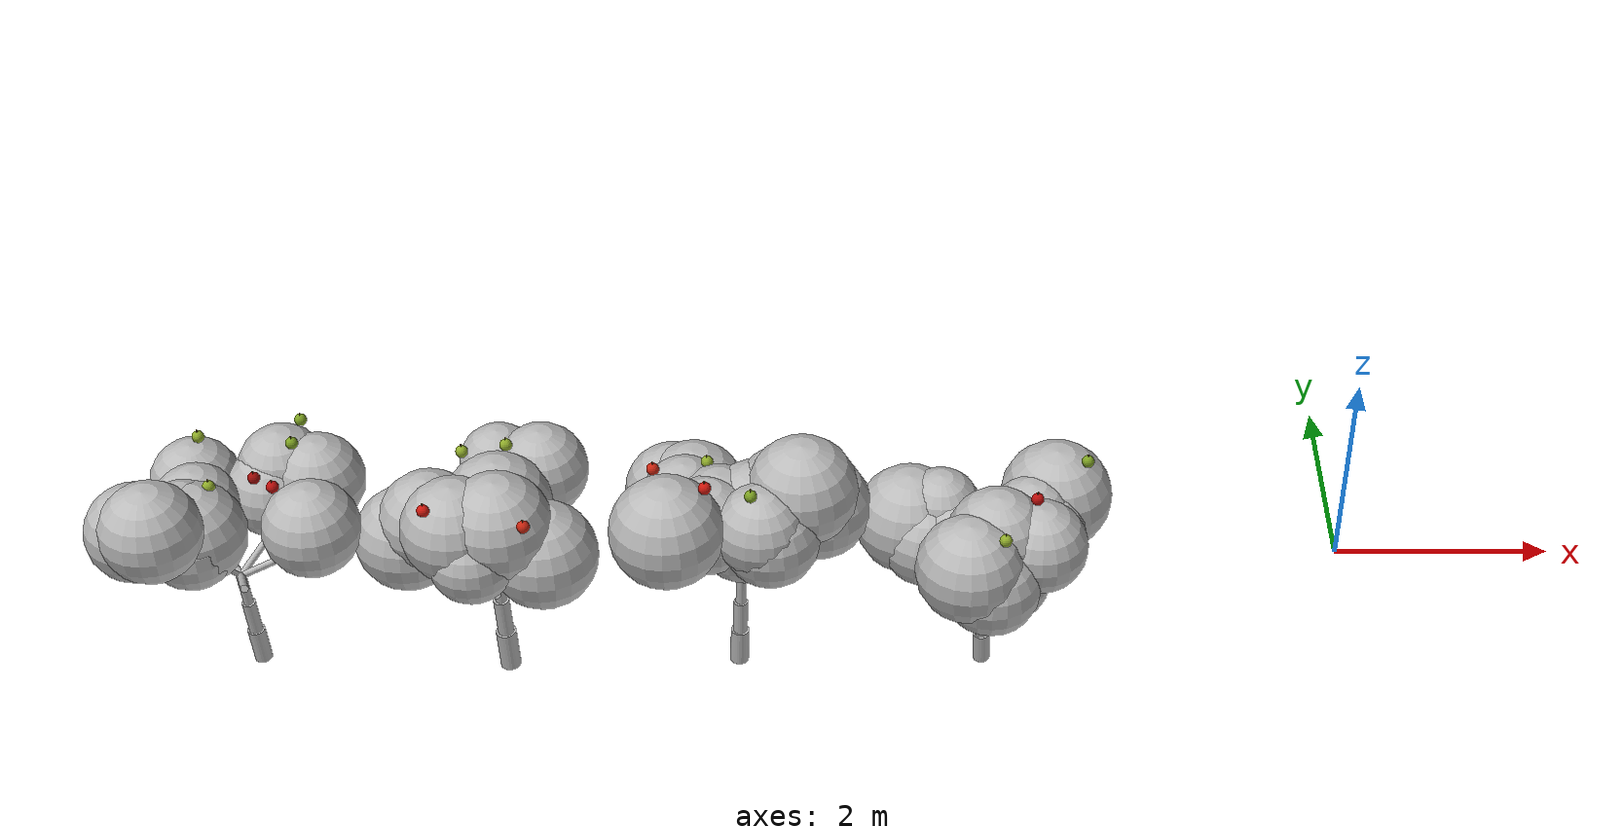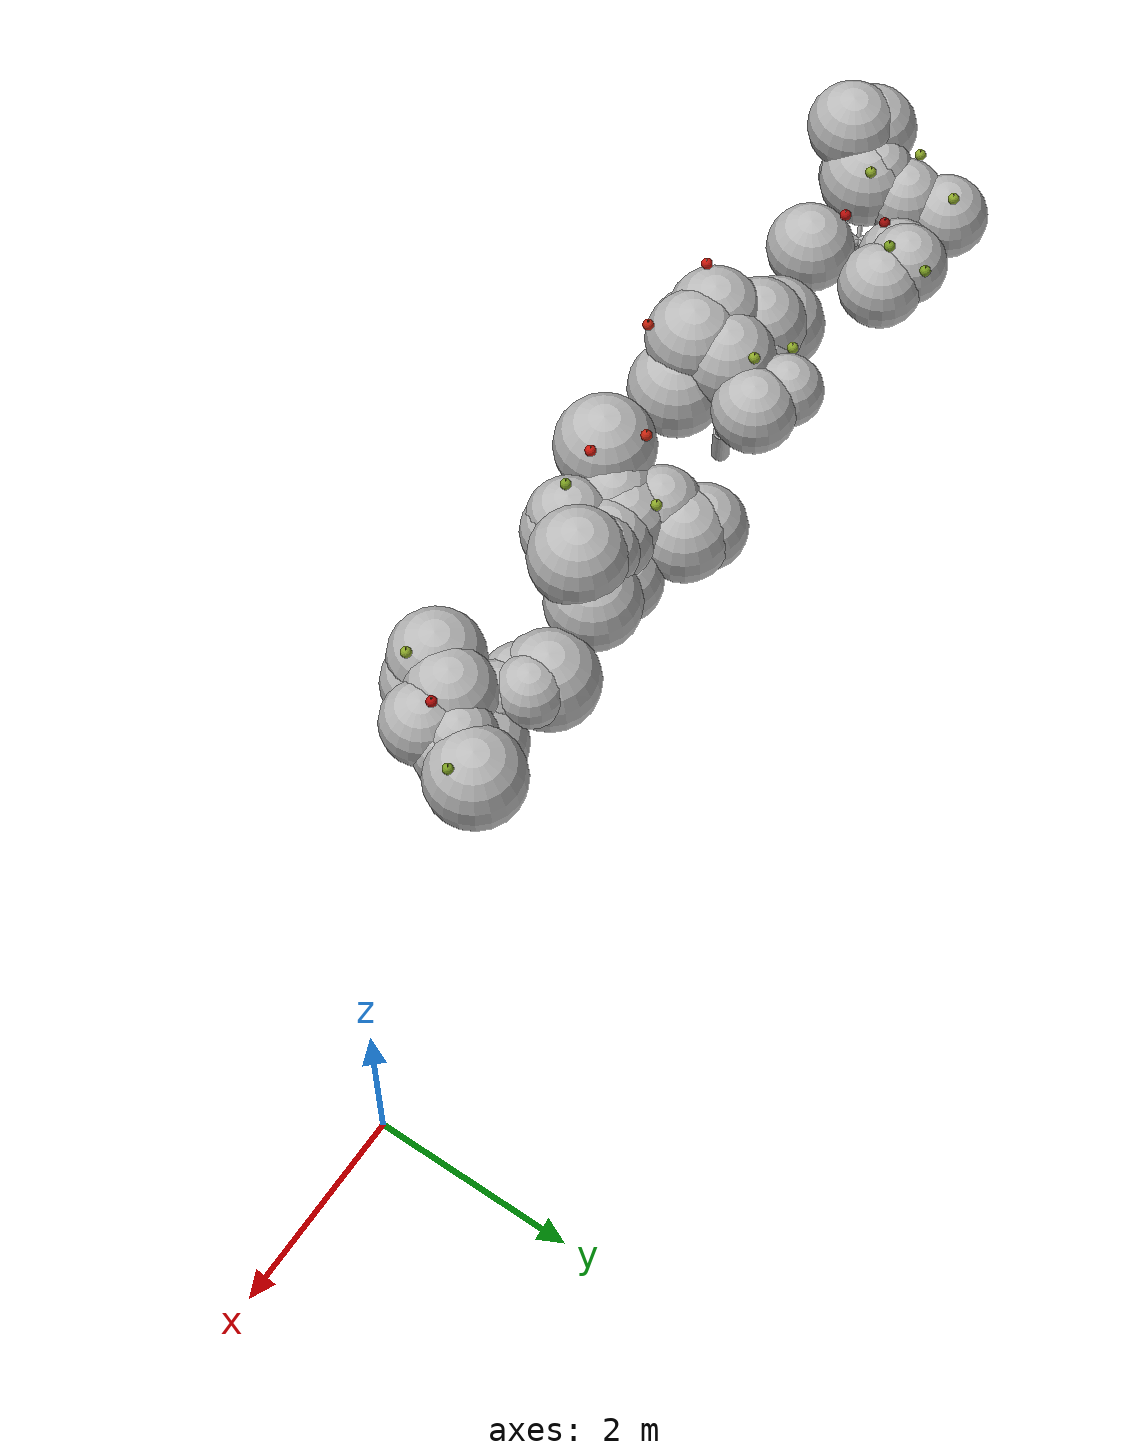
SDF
<sdf version="1.6">
 <world name="default">
  <model name="tree_r2_t3">
   <static>true</static>
   <link name="tree_r2_t3_trunk0">
    <pose>-9.8969 -1.3961 0.1662 0.0010 -0.0494 0</pose>
    <collision name="tree_r2_t3_trunk0_c">
     <geometry><cylinder><radius>0.0787</radius><length>0.3523</length></cylinder></geometry>
    </collision>
    <visual name="tree_r2_t3_trunk0_v">
     <geometry><cylinder><radius>0.0787</radius><length>0.3523</length></cylinder></geometry>
     <material>
      <script>
       <uri>model://orchard/materials/scripts</uri>
       <uri>model://orchard/materials/textures</uri>
       <name>Orchard/Bark</name>
      </script>
     </material>
    </visual>
   </link>
   <link name="tree_r2_t3_trunk1">
    <pose>-9.9133 -1.3964 0.4985 0.0010 -0.0494 0</pose>
    <visual name="tree_r2_t3_trunk1_v">
     <geometry><cylinder><radius>0.0614</radius><length>0.3523</length></cylinder></geometry>
     <material>
      <script>
       <uri>model://orchard/materials/scripts</uri>
       <uri>model://orchard/materials/textures</uri>
       <name>Orchard/Bark</name>
      </script>
     </material>
    </visual>
   </link>
   <link name="tree_r2_t3_trunk2">
    <pose>-9.9297 -1.3968 0.8308 0.0010 -0.0494 0</pose>
    <visual name="tree_r2_t3_trunk2_v">
     <geometry><cylinder><radius>0.0441</radius><length>0.3523</length></cylinder></geometry>
     <material>
      <script>
       <uri>model://orchard/materials/scripts</uri>
       <uri>model://orchard/materials/textures</uri>
       <name>Orchard/Bark</name>
      </script>
     </material>
    </visual>
   </link>
   <link name="tree_r2_t3_br0">
    <pose>-9.6055 -1.3945 1.1801 0.0000 1.0673 0.0072</pose>
    <visual name="tree_r2_t3_br0_v">
     <geometry><cylinder><radius>0.0304</radius><length>0.7589</length></cylinder></geometry>
     <material>
      <script>
       <uri>model://orchard/materials/scripts</uri>
       <uri>model://orchard/materials/textures</uri>
       <name>Orchard/Bark</name>
      </script>
     </material>
    </visual>
   </link>
   <link name="tree_r2_t3_br1">
    <pose>-9.7217 -1.1038 1.1842 0.0000 1.0961 0.9353</pose>
    <visual name="tree_r2_t3_br1_v">
     <geometry><cylinder><radius>0.0303</radius><length>0.8191</length></cylinder></geometry>
     <material>
      <script>
       <uri>model://orchard/materials/scripts</uri>
       <uri>model://orchard/materials/textures</uri>
       <name>Orchard/Bark</name>
      </script>
     </material>
    </visual>
   </link>
   <link name="tree_r2_t3_br2">
    <pose>-10.1174 -1.1754 1.1343 0.0000 1.1219 2.2520</pose>
    <visual name="tree_r2_t3_br2_v">
     <geometry><cylinder><radius>0.0351</radius><length>0.6329</length></cylinder></geometry>
     <material>
      <script>
       <uri>model://orchard/materials/scripts</uri>
       <uri>model://orchard/materials/textures</uri>
       <name>Orchard/Bark</name>
      </script>
     </material>
    </visual>
   </link>
   <link name="tree_r2_t3_br3">
    <pose>-10.1698 -1.5034 1.3050 0.0000 0.6919 3.5718</pose>
    <visual name="tree_r2_t3_br3_v">
     <geometry><cylinder><radius>0.0227</radius><length>0.8000</length></cylinder></geometry>
     <material>
      <script>
       <uri>model://orchard/materials/scripts</uri>
       <uri>model://orchard/materials/textures</uri>
       <name>Orchard/Bark</name>
      </script>
     </material>
    </visual>
   </link>
   <link name="tree_r2_t3_br4">
    <pose>-9.8610 -1.6242 1.1352 0.0000 1.0482 5.0388</pose>
    <visual name="tree_r2_t3_br4_v">
     <geometry><cylinder><radius>0.0341</radius><length>0.5538</length></cylinder></geometry>
     <material>
      <script>
       <uri>model://orchard/materials/scripts</uri>
       <uri>model://orchard/materials/textures</uri>
       <name>Orchard/Bark</name>
      </script>
     </material>
    </visual>
   </link>
   <link name="tree_r2_t3_fol0">
    <pose>-9.5966 -0.6537 1.6222 0 0 0</pose>
    <visual name="tree_r2_t3_fol0_v">
     <geometry><sphere><radius>0.3989</radius></sphere></geometry>
     <material>
      <script>
       <uri>model://orchard/materials/scripts</uri>
       <uri>model://orchard/materials/textures</uri>
       <name>Orchard/Foliage3</name>
      </script>
     </material>
    </visual>
   </link>
   <link name="tree_r2_t3_fol1">
    <pose>-10.2869 -1.1092 1.5546 0 0 0</pose>
    <visual name="tree_r2_t3_fol1_v">
     <geometry><sphere><radius>0.3963</radius></sphere></geometry>
     <material>
      <script>
       <uri>model://orchard/materials/scripts</uri>
       <uri>model://orchard/materials/textures</uri>
       <name>Orchard/Foliage0</name>
      </script>
     </material>
    </visual>
   </link>
   <link name="tree_r2_t3_fol2">
    <pose>-10.2985 -0.9482 1.3684 0 0 0</pose>
    <visual name="tree_r2_t3_fol2_v">
     <geometry><sphere><radius>0.3721</radius></sphere></geometry>
     <material>
      <script>
       <uri>model://orchard/materials/scripts</uri>
       <uri>model://orchard/materials/textures</uri>
       <name>Orchard/Foliage1</name>
      </script>
     </material>
    </visual>
   </link>
   <link name="tree_r2_t3_fol3">
    <pose>-9.6801 -0.7885 1.4694 0 0 0</pose>
    <visual name="tree_r2_t3_fol3_v">
     <geometry><sphere><radius>0.4163</radius></sphere></geometry>
     <material>
      <script>
       <uri>model://orchard/materials/scripts</uri>
       <uri>model://orchard/materials/textures</uri>
       <name>Orchard/Foliage2</name>
      </script>
     </material>
    </visual>
   </link>
   <link name="tree_r2_t3_fol4">
    <pose>-10.2991 -1.4667 1.7121 0 0 0</pose>
    <visual name="tree_r2_t3_fol4_v">
     <geometry><sphere><radius>0.3672</radius></sphere></geometry>
     <material>
      <script>
       <uri>model://orchard/materials/scripts</uri>
       <uri>model://orchard/materials/textures</uri>
       <name>Orchard/Foliage3</name>
      </script>
     </material>
    </visual>
   </link>
   <link name="tree_r2_t3_fol5">
    <pose>-9.2019 -1.5152 1.6757 0 0 0</pose>
    <visual name="tree_r2_t3_fol5_v">
     <geometry><sphere><radius>0.4321</radius></sphere></geometry>
     <material>
      <script>
       <uri>model://orchard/materials/scripts</uri>
       <uri>model://orchard/materials/textures</uri>
       <name>Orchard/Foliage2</name>
      </script>
     </material>
    </visual>
   </link>
   <link name="tree_r2_t3_fol6">
    <pose>-10.4704 -1.8666 1.9496 0 0 0</pose>
    <visual name="tree_r2_t3_fol6_v">
     <geometry><sphere><radius>0.4471</radius></sphere></geometry>
     <material>
      <script>
       <uri>model://orchard/materials/scripts</uri>
       <uri>model://orchard/materials/textures</uri>
       <name>Orchard/Foliage1</name>
      </script>
     </material>
    </visual>
   </link>
   <link name="tree_r2_t3_fol7">
    <pose>-9.2734 -0.7504 1.5731 0 0 0</pose>
    <visual name="tree_r2_t3_fol7_v">
     <geometry><sphere><radius>0.4174</radius></sphere></geometry>
     <material>
      <script>
       <uri>model://orchard/materials/scripts</uri>
       <uri>model://orchard/materials/textures</uri>
       <name>Orchard/Foliage3</name>
      </script>
     </material>
    </visual>
   </link>
   <link name="tree_r2_t3_fol8">
    <pose>-10.3825 -0.6864 1.4820 0 0 0</pose>
    <visual name="tree_r2_t3_fol8_v">
     <geometry><sphere><radius>0.4093</radius></sphere></geometry>
     <material>
      <script>
       <uri>model://orchard/materials/scripts</uri>
       <uri>model://orchard/materials/textures</uri>
       <name>Orchard/Foliage1</name>
      </script>
     </material>
    </visual>
   </link>
   <link name="tree_r2_t3_fol9">
    <pose>-10.2348 -1.6050 1.5795 0 0 0</pose>
    <visual name="tree_r2_t3_fol9_v">
     <geometry><sphere><radius>0.4102</radius></sphere></geometry>
     <material>
      <script>
       <uri>model://orchard/materials/scripts</uri>
       <uri>model://orchard/materials/textures</uri>
       <name>Orchard/Foliage2</name>
      </script>
     </material>
    </visual>
   </link>
   <link name="tree_r2_t3_fol10">
    <pose>-10.2209 -1.5276 1.6231 0 0 0</pose>
    <visual name="tree_r2_t3_fol10_v">
     <geometry><sphere><radius>0.4633</radius></sphere></geometry>
     <material>
      <script>
       <uri>model://orchard/materials/scripts</uri>
       <uri>model://orchard/materials/textures</uri>
       <name>Orchard/Foliage3</name>
      </script>
     </material>
    </visual>
   </link>
   <link name="tree_r2_t3_fol11">
    <pose>-10.6438 -1.7339 1.8244 0 0 0</pose>
    <visual name="tree_r2_t3_fol11_v">
     <geometry><sphere><radius>0.4372</radius></sphere></geometry>
     <material>
      <script>
       <uri>model://orchard/materials/scripts</uri>
       <uri>model://orchard/materials/textures</uri>
       <name>Orchard/Foliage2</name>
      </script>
     </material>
    </visual>
   </link>
   <link name="tree_r2_t3_ap0">
    <pose>-9.4439 -0.7759 2.0070 0 0 0</pose>
    <visual name="tree_r2_t3_ap0_v">
     <geometry><sphere><radius>0.0550</radius></sphere></geometry>
     <material>
      <ambient>0.192 0.248 0.052 1.00</ambient>
      <diffuse>0.480 0.620 0.130 1.00</diffuse>
      <specular>0.45 0.35 0.32 1</specular>
     </material>
    </visual>
   </link>
   <link name="tree_r2_t3_st0">
    <pose>-9.4439 -0.7759 2.0592 0 0 0</pose>
    <visual name="tree_r2_t3_st0_v">
     <geometry><cylinder><radius>0.0060</radius><length>0.0500</length></cylinder></geometry>
     <material><ambient>0.128 0.096 0.040 1.00</ambient><diffuse>0.320 0.240 0.100 1.00</diffuse></material>
    </visual>
   </link>
   <link name="tree_r2_t3_ap1">
    <pose>-9.7621 -1.0225 1.8164 0 0 0</pose>
    <visual name="tree_r2_t3_ap1_v">
     <geometry><sphere><radius>0.0550</radius></sphere></geometry>
     <material>
      <ambient>0.248 0.016 0.012 1.00</ambient>
      <diffuse>0.620 0.040 0.030 1.00</diffuse>
      <specular>0.45 0.35 0.32 1</specular>
     </material>
    </visual>
   </link>
   <link name="tree_r2_t3_st1">
    <pose>-9.7621 -1.0225 1.8686 0 0 0</pose>
    <visual name="tree_r2_t3_st1_v">
     <geometry><cylinder><radius>0.0060</radius><length>0.0500</length></cylinder></geometry>
     <material><ambient>0.128 0.096 0.040 1.00</ambient><diffuse>0.320 0.240 0.100 1.00</diffuse></material>
    </visual>
   </link>
   <link name="tree_r2_t3_ap2">
    <pose>-10.3117 -0.5933 1.9257 0 0 0</pose>
    <visual name="tree_r2_t3_ap2_v">
     <geometry><sphere><radius>0.0550</radius></sphere></geometry>
     <material>
      <ambient>0.220 0.264 0.064 1.00</ambient>
      <diffuse>0.550 0.660 0.160 1.00</diffuse>
      <specular>0.45 0.35 0.32 1</specular>
     </material>
    </visual>
   </link>
   <link name="tree_r2_t3_st2">
    <pose>-10.3117 -0.5933 1.9779 0 0 0</pose>
    <visual name="tree_r2_t3_st2_v">
     <geometry><cylinder><radius>0.0060</radius><length>0.0500</length></cylinder></geometry>
     <material><ambient>0.128 0.096 0.040 1.00</ambient><diffuse>0.320 0.240 0.100 1.00</diffuse></material>
    </visual>
   </link>
   <link name="tree_r2_t3_ap3">
    <pose>-9.4431 -0.3655 1.9296 0 0 0</pose>
    <visual name="tree_r2_t3_ap3_v">
     <geometry><sphere><radius>0.0550</radius></sphere></geometry>
     <material>
      <ambient>0.192 0.248 0.052 1.00</ambient>
      <diffuse>0.480 0.620 0.130 1.00</diffuse>
      <specular>0.45 0.35 0.32 1</specular>
     </material>
    </visual>
   </link>
   <link name="tree_r2_t3_st3">
    <pose>-9.4431 -0.3655 1.9818 0 0 0</pose>
    <visual name="tree_r2_t3_st3_v">
     <geometry><cylinder><radius>0.0060</radius><length>0.0500</length></cylinder></geometry>
     <material><ambient>0.128 0.096 0.040 1.00</ambient><diffuse>0.320 0.240 0.100 1.00</diffuse></material>
    </visual>
   </link>
   <link name="tree_r2_t3_ap4">
    <pose>-10.6223 -1.1655 1.8428 0 0 0</pose>
    <visual name="tree_r2_t3_ap4_v">
     <geometry><sphere><radius>0.0550</radius></sphere></geometry>
     <material>
      <ambient>0.220 0.264 0.064 1.00</ambient>
      <diffuse>0.550 0.660 0.160 1.00</diffuse>
      <specular>0.45 0.35 0.32 1</specular>
     </material>
    </visual>
   </link>
   <link name="tree_r2_t3_st4">
    <pose>-10.6223 -1.1655 1.8950 0 0 0</pose>
    <visual name="tree_r2_t3_st4_v">
     <geometry><cylinder><radius>0.0060</radius><length>0.0500</length></cylinder></geometry>
     <material><ambient>0.128 0.096 0.040 1.00</ambient><diffuse>0.320 0.240 0.100 1.00</diffuse></material>
    </visual>
   </link>
   <link name="tree_r2_t3_ap5">
    <pose>-9.5229 -1.3310 1.9839 0 0 0</pose>
    <visual name="tree_r2_t3_ap5_v">
     <geometry><sphere><radius>0.0550</radius></sphere></geometry>
     <material>
      <ambient>0.288 0.020 0.016 1.00</ambient>
      <diffuse>0.720 0.050 0.040 1.00</diffuse>
      <specular>0.45 0.35 0.32 1</specular>
     </material>
    </visual>
   </link>
   <link name="tree_r2_t3_st5">
    <pose>-9.5229 -1.3310 2.0362 0 0 0</pose>
    <visual name="tree_r2_t3_st5_v">
     <geometry><cylinder><radius>0.0060</radius><length>0.0500</length></cylinder></geometry>
     <material><ambient>0.128 0.096 0.040 1.00</ambient><diffuse>0.320 0.240 0.100 1.00</diffuse></material>
    </visual>
   </link>
   <link name="tree_r2_t3_ap6">
    <pose>-10.0522 -1.3846 2.0376 0 0 0</pose>
    <visual name="tree_r2_t3_ap6_v">
     <geometry><sphere><radius>0.0550</radius></sphere></geometry>
     <material>
      <ambient>0.220 0.264 0.064 1.00</ambient>
      <diffuse>0.550 0.660 0.160 1.00</diffuse>
      <specular>0.45 0.35 0.32 1</specular>
     </material>
    </visual>
   </link>
   <link name="tree_r2_t3_st6">
    <pose>-10.0522 -1.3846 2.0898 0 0 0</pose>
    <visual name="tree_r2_t3_st6_v">
     <geometry><cylinder><radius>0.0060</radius><length>0.0500</length></cylinder></geometry>
     <material><ambient>0.128 0.096 0.040 1.00</ambient><diffuse>0.320 0.240 0.100 1.00</diffuse></material>
    </visual>
   </link>
  </model>
  <model name="tree_r2_t4">
   <static>true</static>
   <link name="tree_r2_t4_trunk0">
    <pose>-7.6421 -1.4709 0.1883 -0.0273 -0.0277 0</pose>
    <collision name="tree_r2_t4_trunk0_c">
     <geometry><cylinder><radius>0.0909</radius><length>0.3991</length></cylinder></geometry>
    </collision>
    <visual name="tree_r2_t4_trunk0_v">
     <geometry><cylinder><radius>0.0909</radius><length>0.3991</length></cylinder></geometry>
     <material>
      <script>
       <uri>model://orchard/materials/scripts</uri>
       <uri>model://orchard/materials/textures</uri>
       <name>Orchard/Bark</name>
      </script>
     </material>
    </visual>
   </link>
   <link name="tree_r2_t4_trunk1">
    <pose>-7.6525 -1.4606 0.5648 -0.0273 -0.0277 0</pose>
    <visual name="tree_r2_t4_trunk1_v">
     <geometry><cylinder><radius>0.0709</radius><length>0.3991</length></cylinder></geometry>
     <material>
      <script>
       <uri>model://orchard/materials/scripts</uri>
       <uri>model://orchard/materials/textures</uri>
       <name>Orchard/Bark</name>
      </script>
     </material>
    </visual>
   </link>
   <link name="tree_r2_t4_trunk2">
    <pose>-7.6629 -1.4504 0.9413 -0.0273 -0.0277 0</pose>
    <visual name="tree_r2_t4_trunk2_v">
     <geometry><cylinder><radius>0.0509</radius><length>0.3991</length></cylinder></geometry>
     <material>
      <script>
       <uri>model://orchard/materials/scripts</uri>
       <uri>model://orchard/materials/textures</uri>
       <name>Orchard/Bark</name>
      </script>
     </material>
    </visual>
   </link>
   <link name="tree_r2_t4_br0">
    <pose>-7.4969 -1.4585 1.3574 0.0000 0.6459 -0.0772</pose>
    <visual name="tree_r2_t4_br0_v">
     <geometry><cylinder><radius>0.0241</radius><length>0.5706</length></cylinder></geometry>
     <material>
      <script>
       <uri>model://orchard/materials/scripts</uri>
       <uri>model://orchard/materials/textures</uri>
       <name>Orchard/Bark</name>
      </script>
     </material>
    </visual>
   </link>
   <link name="tree_r2_t4_br1">
    <pose>-7.5197 -1.1123 1.3211 0.0000 1.0869 1.1516</pose>
    <visual name="tree_r2_t4_br1_v">
     <geometry><cylinder><radius>0.0304</radius><length>0.8236</length></cylinder></geometry>
     <material>
      <script>
       <uri>model://orchard/materials/scripts</uri>
       <uri>model://orchard/materials/textures</uri>
       <name>Orchard/Bark</name>
      </script>
     </material>
    </visual>
   </link>
   <link name="tree_r2_t4_br2">
    <pose>-7.9235 -1.3371 1.2668 0.0000 1.1114 2.7410</pose>
    <visual name="tree_r2_t4_br2_v">
     <geometry><cylinder><radius>0.0267</radius><length>0.6190</length></cylinder></geometry>
     <material>
      <script>
       <uri>model://orchard/materials/scripts</uri>
       <uri>model://orchard/materials/textures</uri>
       <name>Orchard/Bark</name>
      </script>
     </material>
    </visual>
   </link>
   <link name="tree_r2_t4_br3">
    <pose>-7.8542 -1.6174 1.3871 0.0000 0.7774 3.8881</pose>
    <visual name="tree_r2_t4_br3_v">
     <geometry><cylinder><radius>0.0346</radius><length>0.7229</length></cylinder></geometry>
     <material>
      <script>
       <uri>model://orchard/materials/scripts</uri>
       <uri>model://orchard/materials/textures</uri>
       <name>Orchard/Bark</name>
      </script>
     </material>
    </visual>
   </link>
   <link name="tree_r2_t4_br4">
    <pose>-7.6126 -1.7863 1.2982 0.0000 1.1166 4.8736</pose>
    <visual name="tree_r2_t4_br4_v">
     <geometry><cylinder><radius>0.0342</radius><length>0.7691</length></cylinder></geometry>
     <material>
      <script>
       <uri>model://orchard/materials/scripts</uri>
       <uri>model://orchard/materials/textures</uri>
       <name>Orchard/Bark</name>
      </script>
     </material>
    </visual>
   </link>
   <link name="tree_r2_t4_fol0">
    <pose>-7.5511 -1.7599 1.9280 0 0 0</pose>
    <visual name="tree_r2_t4_fol0_v">
     <geometry><sphere><radius>0.4766</radius></sphere></geometry>
     <material>
      <script>
       <uri>model://orchard/materials/scripts</uri>
       <uri>model://orchard/materials/textures</uri>
       <name>Orchard/Foliage2</name>
      </script>
     </material>
    </visual>
   </link>
   <link name="tree_r2_t4_fol1">
    <pose>-7.8788 -1.2868 1.5521 0 0 0</pose>
    <visual name="tree_r2_t4_fol1_v">
     <geometry><sphere><radius>0.3923</radius></sphere></geometry>
     <material>
      <script>
       <uri>model://orchard/materials/scripts</uri>
       <uri>model://orchard/materials/textures</uri>
       <name>Orchard/Foliage1</name>
      </script>
     </material>
    </visual>
   </link>
   <link name="tree_r2_t4_fol2">
    <pose>-8.4132 -1.3727 1.4400 0 0 0</pose>
    <visual name="tree_r2_t4_fol2_v">
     <geometry><sphere><radius>0.4695</radius></sphere></geometry>
     <material>
      <script>
       <uri>model://orchard/materials/scripts</uri>
       <uri>model://orchard/materials/textures</uri>
       <name>Orchard/Foliage0</name>
      </script>
     </material>
    </visual>
   </link>
   <link name="tree_r2_t4_fol3">
    <pose>-7.7690 -1.9524 1.7010 0 0 0</pose>
    <visual name="tree_r2_t4_fol3_v">
     <geometry><sphere><radius>0.3746</radius></sphere></geometry>
     <material>
      <script>
       <uri>model://orchard/materials/scripts</uri>
       <uri>model://orchard/materials/textures</uri>
       <name>Orchard/Foliage1</name>
      </script>
     </material>
    </visual>
   </link>
   <link name="tree_r2_t4_fol4">
    <pose>-7.9180 -1.7631 1.8888 0 0 0</pose>
    <visual name="tree_r2_t4_fol4_v">
     <geometry><sphere><radius>0.4672</radius></sphere></geometry>
     <material>
      <script>
       <uri>model://orchard/materials/scripts</uri>
       <uri>model://orchard/materials/textures</uri>
       <name>Orchard/Foliage0</name>
      </script>
     </material>
    </visual>
   </link>
   <link name="tree_r2_t4_fol5">
    <pose>-7.5641 -1.5170 1.5426 0 0 0</pose>
    <visual name="tree_r2_t4_fol5_v">
     <geometry><sphere><radius>0.4543</radius></sphere></geometry>
     <material>
      <script>
       <uri>model://orchard/materials/scripts</uri>
       <uri>model://orchard/materials/textures</uri>
       <name>Orchard/Foliage3</name>
      </script>
     </material>
    </visual>
   </link>
   <link name="tree_r2_t4_fol6">
    <pose>-7.2655 -0.8834 1.8109 0 0 0</pose>
    <visual name="tree_r2_t4_fol6_v">
     <geometry><sphere><radius>0.4130</radius></sphere></geometry>
     <material>
      <script>
       <uri>model://orchard/materials/scripts</uri>
       <uri>model://orchard/materials/textures</uri>
       <name>Orchard/Foliage0</name>
      </script>
     </material>
    </visual>
   </link>
   <link name="tree_r2_t4_fol7">
    <pose>-7.8195 -1.6517 1.6911 0 0 0</pose>
    <visual name="tree_r2_t4_fol7_v">
     <geometry><sphere><radius>0.4244</radius></sphere></geometry>
     <material>
      <script>
       <uri>model://orchard/materials/scripts</uri>
       <uri>model://orchard/materials/textures</uri>
       <name>Orchard/Foliage2</name>
      </script>
     </material>
    </visual>
   </link>
   <link name="tree_r2_t4_fol8">
    <pose>-8.1854 -1.4206 1.6823 0 0 0</pose>
    <visual name="tree_r2_t4_fol8_v">
     <geometry><sphere><radius>0.4557</radius></sphere></geometry>
     <material>
      <script>
       <uri>model://orchard/materials/scripts</uri>
       <uri>model://orchard/materials/textures</uri>
       <name>Orchard/Foliage2</name>
      </script>
     </material>
    </visual>
   </link>
   <link name="tree_r2_t4_fol9">
    <pose>-7.1941 -1.7153 1.5567 0 0 0</pose>
    <visual name="tree_r2_t4_fol9_v">
     <geometry><sphere><radius>0.4795</radius></sphere></geometry>
     <material>
      <script>
       <uri>model://orchard/materials/scripts</uri>
       <uri>model://orchard/materials/textures</uri>
       <name>Orchard/Foliage2</name>
      </script>
     </material>
    </visual>
   </link>
   <link name="tree_r2_t4_fol10">
    <pose>-7.6482 -0.7589 1.7788 0 0 0</pose>
    <visual name="tree_r2_t4_fol10_v">
     <geometry><sphere><radius>0.3539</radius></sphere></geometry>
     <material>
      <script>
       <uri>model://orchard/materials/scripts</uri>
       <uri>model://orchard/materials/textures</uri>
       <name>Orchard/Foliage1</name>
      </script>
     </material>
    </visual>
   </link>
   <link name="tree_r2_t4_fol11">
    <pose>-7.5895 -1.4012 1.8360 0 0 0</pose>
    <visual name="tree_r2_t4_fol11_v">
     <geometry><sphere><radius>0.4777</radius></sphere></geometry>
     <material>
      <script>
       <uri>model://orchard/materials/scripts</uri>
       <uri>model://orchard/materials/textures</uri>
       <name>Orchard/Foliage1</name>
      </script>
     </material>
    </visual>
   </link>
   <link name="tree_r2_t4_ap0">
    <pose>-7.2714 -2.0971 2.2193 0 0 0</pose>
    <visual name="tree_r2_t4_ap0_v">
     <geometry><sphere><radius>0.0550</radius></sphere></geometry>
     <material>
      <ambient>0.312 0.056 0.024 1.00</ambient>
      <diffuse>0.780 0.140 0.060 1.00</diffuse>
      <specular>0.45 0.35 0.32 1</specular>
     </material>
    </visual>
   </link>
   <link name="tree_r2_t4_st0">
    <pose>-7.2714 -2.0971 2.2716 0 0 0</pose>
    <visual name="tree_r2_t4_st0_v">
     <geometry><cylinder><radius>0.0060</radius><length>0.0500</length></cylinder></geometry>
     <material><ambient>0.128 0.096 0.040 1.00</ambient><diffuse>0.320 0.240 0.100 1.00</diffuse></material>
    </visual>
   </link>
   <link name="tree_r2_t4_ap1">
    <pose>-7.9423 -0.8988 2.0168 0 0 0</pose>
    <visual name="tree_r2_t4_ap1_v">
     <geometry><sphere><radius>0.0550</radius></sphere></geometry>
     <material>
      <ambient>0.220 0.264 0.064 1.00</ambient>
      <diffuse>0.550 0.660 0.160 1.00</diffuse>
      <specular>0.45 0.35 0.32 1</specular>
     </material>
    </visual>
   </link>
   <link name="tree_r2_t4_st1">
    <pose>-7.9423 -0.8988 2.0690 0 0 0</pose>
    <visual name="tree_r2_t4_st1_v">
     <geometry><cylinder><radius>0.0060</radius><length>0.0500</length></cylinder></geometry>
     <material><ambient>0.128 0.096 0.040 1.00</ambient><diffuse>0.320 0.240 0.100 1.00</diffuse></material>
    </visual>
   </link>
   <link name="tree_r2_t4_ap2">
    <pose>-7.5207 -1.0623 2.2339 0 0 0</pose>
    <visual name="tree_r2_t4_ap2_v">
     <geometry><sphere><radius>0.0550</radius></sphere></geometry>
     <material>
      <ambient>0.220 0.264 0.064 1.00</ambient>
      <diffuse>0.550 0.660 0.160 1.00</diffuse>
      <specular>0.45 0.35 0.32 1</specular>
     </material>
    </visual>
   </link>
   <link name="tree_r2_t4_st2">
    <pose>-7.5207 -1.0623 2.2862 0 0 0</pose>
    <visual name="tree_r2_t4_st2_v">
     <geometry><cylinder><radius>0.0060</radius><length>0.0500</length></cylinder></geometry>
     <material><ambient>0.128 0.096 0.040 1.00</ambient><diffuse>0.320 0.240 0.100 1.00</diffuse></material>
    </visual>
   </link>
   <link name="tree_r2_t4_ap3">
    <pose>-8.1077 -1.9974 2.3085 0 0 0</pose>
    <visual name="tree_r2_t4_ap3_v">
     <geometry><sphere><radius>0.0550</radius></sphere></geometry>
     <material>
      <ambient>0.320 0.036 0.020 1.00</ambient>
      <diffuse>0.800 0.090 0.050 1.00</diffuse>
      <specular>0.45 0.35 0.32 1</specular>
     </material>
    </visual>
   </link>
   <link name="tree_r2_t4_st3">
    <pose>-8.1077 -1.9974 2.3607 0 0 0</pose>
    <visual name="tree_r2_t4_st3_v">
     <geometry><cylinder><radius>0.0060</radius><length>0.0500</length></cylinder></geometry>
     <material><ambient>0.128 0.096 0.040 1.00</ambient><diffuse>0.320 0.240 0.100 1.00</diffuse></material>
    </visual>
   </link>
  </model>
  <model name="tree_r2_t5">
   <static>true</static>
   <link name="tree_r2_t5_trunk0">
    <pose>-5.5630 -1.4047 0.1651 -0.0587 0.0497 0</pose>
    <collision name="tree_r2_t5_trunk0_c">
     <geometry><cylinder><radius>0.0816</radius><length>0.3501</length></cylinder></geometry>
    </collision>
    <visual name="tree_r2_t5_trunk0_v">
     <geometry><cylinder><radius>0.0816</radius><length>0.3501</length></cylinder></geometry>
     <material>
      <script>
       <uri>model://orchard/materials/scripts</uri>
       <uri>model://orchard/materials/textures</uri>
       <name>Orchard/Bark</name>
      </script>
     </material>
    </visual>
   </link>
   <link name="tree_r2_t5_trunk1">
    <pose>-5.5466 -1.3853 0.4954 -0.0587 0.0497 0</pose>
    <visual name="tree_r2_t5_trunk1_v">
     <geometry><cylinder><radius>0.0637</radius><length>0.3501</length></cylinder></geometry>
     <material>
      <script>
       <uri>model://orchard/materials/scripts</uri>
       <uri>model://orchard/materials/textures</uri>
       <name>Orchard/Bark</name>
      </script>
     </material>
    </visual>
   </link>
   <link name="tree_r2_t5_trunk2">
    <pose>-5.5302 -1.3659 0.8256 -0.0587 0.0497 0</pose>
    <visual name="tree_r2_t5_trunk2_v">
     <geometry><cylinder><radius>0.0457</radius><length>0.3501</length></cylinder></geometry>
     <material>
      <script>
       <uri>model://orchard/materials/scripts</uri>
       <uri>model://orchard/materials/textures</uri>
       <name>Orchard/Bark</name>
      </script>
     </material>
    </visual>
   </link>
   <link name="tree_r2_t5_br0">
    <pose>-5.2396 -1.2940 1.2901 0.0000 0.7681 0.2170</pose>
    <visual name="tree_r2_t5_br0_v">
     <geometry><cylinder><radius>0.0302</radius><length>0.8324</length></cylinder></geometry>
     <material>
      <script>
       <uri>model://orchard/materials/scripts</uri>
       <uri>model://orchard/materials/textures</uri>
       <name>Orchard/Bark</name>
      </script>
     </material>
    </visual>
   </link>
   <link name="tree_r2_t5_br1">
    <pose>-5.3874 -1.1647 1.2365 0.0000 0.7611 0.9587</pose>
    <visual name="tree_r2_t5_br1_v">
     <geometry><cylinder><radius>0.0230</radius><length>0.6788</length></cylinder></geometry>
     <material>
      <script>
       <uri>model://orchard/materials/scripts</uri>
       <uri>model://orchard/materials/textures</uri>
       <name>Orchard/Bark</name>
      </script>
     </material>
    </visual>
   </link>
   <link name="tree_r2_t5_br2">
    <pose>-5.7170 -1.1195 1.2176 0.0000 0.9339 2.2598</pose>
    <visual name="tree_r2_t5_br2_v">
     <geometry><cylinder><radius>0.0351</radius><length>0.7629</length></cylinder></geometry>
     <material>
      <script>
       <uri>model://orchard/materials/scripts</uri>
       <uri>model://orchard/materials/textures</uri>
       <name>Orchard/Bark</name>
      </script>
     </material>
    </visual>
   </link>
   <link name="tree_r2_t5_br3">
    <pose>-5.7248 -1.4751 1.3049 0.0000 0.6424 3.6716</pose>
    <visual name="tree_r2_t5_br3_v">
     <geometry><cylinder><radius>0.0271</radius><length>0.7849</length></cylinder></geometry>
     <material>
      <script>
       <uri>model://orchard/materials/scripts</uri>
       <uri>model://orchard/materials/textures</uri>
       <name>Orchard/Bark</name>
      </script>
     </material>
    </visual>
   </link>
   <link name="tree_r2_t5_br4">
    <pose>-5.4780 -1.5268 1.2165 0.0000 0.6624 4.9649</pose>
    <visual name="tree_r2_t5_br4_v">
     <geometry><cylinder><radius>0.0359</radius><length>0.5727</length></cylinder></geometry>
     <material>
      <script>
       <uri>model://orchard/materials/scripts</uri>
       <uri>model://orchard/materials/textures</uri>
       <name>Orchard/Bark</name>
      </script>
     </material>
    </visual>
   </link>
   <link name="tree_r2_t5_fol0">
    <pose>-5.4772 -1.4051 1.4860 0 0 0</pose>
    <visual name="tree_r2_t5_fol0_v">
     <geometry><sphere><radius>0.4125</radius></sphere></geometry>
     <material>
      <script>
       <uri>model://orchard/materials/scripts</uri>
       <uri>model://orchard/materials/textures</uri>
       <name>Orchard/Foliage3</name>
      </script>
     </material>
    </visual>
   </link>
   <link name="tree_r2_t5_fol1">
    <pose>-5.7823 -1.4681 1.6743 0 0 0</pose>
    <visual name="tree_r2_t5_fol1_v">
     <geometry><sphere><radius>0.4356</radius></sphere></geometry>
     <material>
      <script>
       <uri>model://orchard/materials/scripts</uri>
       <uri>model://orchard/materials/textures</uri>
       <name>Orchard/Foliage0</name>
      </script>
     </material>
    </visual>
   </link>
   <link name="tree_r2_t5_fol2">
    <pose>-5.2362 -1.4958 1.7333 0 0 0</pose>
    <visual name="tree_r2_t5_fol2_v">
     <geometry><sphere><radius>0.3999</radius></sphere></geometry>
     <material>
      <script>
       <uri>model://orchard/materials/scripts</uri>
       <uri>model://orchard/materials/textures</uri>
       <name>Orchard/Foliage3</name>
      </script>
     </material>
    </visual>
   </link>
   <link name="tree_r2_t5_fol3">
    <pose>-4.8419 -1.0444 1.5141 0 0 0</pose>
    <visual name="tree_r2_t5_fol3_v">
     <geometry><sphere><radius>0.4724</radius></sphere></geometry>
     <material>
      <script>
       <uri>model://orchard/materials/scripts</uri>
       <uri>model://orchard/materials/textures</uri>
       <name>Orchard/Foliage0</name>
      </script>
     </material>
    </visual>
   </link>
   <link name="tree_r2_t5_fol4">
    <pose>-5.9460 -0.7783 1.4530 0 0 0</pose>
    <visual name="tree_r2_t5_fol4_v">
     <geometry><sphere><radius>0.4615</radius></sphere></geometry>
     <material>
      <script>
       <uri>model://orchard/materials/scripts</uri>
       <uri>model://orchard/materials/textures</uri>
       <name>Orchard/Foliage0</name>
      </script>
     </material>
    </visual>
   </link>
   <link name="tree_r2_t5_fol5">
    <pose>-5.1632 -1.1778 1.8474 0 0 0</pose>
    <visual name="tree_r2_t5_fol5_v">
     <geometry><sphere><radius>0.3688</radius></sphere></geometry>
     <material>
      <script>
       <uri>model://orchard/materials/scripts</uri>
       <uri>model://orchard/materials/textures</uri>
       <name>Orchard/Foliage0</name>
      </script>
     </material>
    </visual>
   </link>
   <link name="tree_r2_t5_fol6">
    <pose>-5.2832 -1.0674 1.2725 0 0 0</pose>
    <visual name="tree_r2_t5_fol6_v">
     <geometry><sphere><radius>0.4360</radius></sphere></geometry>
     <material>
      <script>
       <uri>model://orchard/materials/scripts</uri>
       <uri>model://orchard/materials/textures</uri>
       <name>Orchard/Foliage3</name>
      </script>
     </material>
    </visual>
   </link>
   <link name="tree_r2_t5_fol7">
    <pose>-5.6464 -1.2572 1.6213 0 0 0</pose>
    <visual name="tree_r2_t5_fol7_v">
     <geometry><sphere><radius>0.4231</radius></sphere></geometry>
     <material>
      <script>
       <uri>model://orchard/materials/scripts</uri>
       <uri>model://orchard/materials/textures</uri>
       <name>Orchard/Foliage0</name>
      </script>
     </material>
    </visual>
   </link>
   <link name="tree_r2_t5_fol8">
    <pose>-5.2323 -1.2873 1.6160 0 0 0</pose>
    <visual name="tree_r2_t5_fol8_v">
     <geometry><sphere><radius>0.3703</radius></sphere></geometry>
     <material>
      <script>
       <uri>model://orchard/materials/scripts</uri>
       <uri>model://orchard/materials/textures</uri>
       <name>Orchard/Foliage2</name>
      </script>
     </material>
    </visual>
   </link>
   <link name="tree_r2_t5_fol9">
    <pose>-4.9680 -1.2951 1.9249 0 0 0</pose>
    <visual name="tree_r2_t5_fol9_v">
     <geometry><sphere><radius>0.4877</radius></sphere></geometry>
     <material>
      <script>
       <uri>model://orchard/materials/scripts</uri>
       <uri>model://orchard/materials/textures</uri>
       <name>Orchard/Foliage0</name>
      </script>
     </material>
    </visual>
   </link>
   <link name="tree_r2_t5_fol10">
    <pose>-5.3157 -1.6503 1.7798 0 0 0</pose>
    <visual name="tree_r2_t5_fol10_v">
     <geometry><sphere><radius>0.4148</radius></sphere></geometry>
     <material>
      <script>
       <uri>model://orchard/materials/scripts</uri>
       <uri>model://orchard/materials/textures</uri>
       <name>Orchard/Foliage3</name>
      </script>
     </material>
    </visual>
   </link>
   <link name="tree_r2_t5_fol11">
    <pose>-5.3738 -1.2484 1.6720 0 0 0</pose>
    <visual name="tree_r2_t5_fol11_v">
     <geometry><sphere><radius>0.4383</radius></sphere></geometry>
     <material>
      <script>
       <uri>model://orchard/materials/scripts</uri>
       <uri>model://orchard/materials/textures</uri>
       <name>Orchard/Foliage1</name>
      </script>
     </material>
    </visual>
   </link>
   <link name="tree_r2_t5_fol12">
    <pose>-5.2629 -1.6141 1.6983 0 0 0</pose>
    <visual name="tree_r2_t5_fol12_v">
     <geometry><sphere><radius>0.3796</radius></sphere></geometry>
     <material>
      <script>
       <uri>model://orchard/materials/scripts</uri>
       <uri>model://orchard/materials/textures</uri>
       <name>Orchard/Foliage3</name>
      </script>
     </material>
    </visual>
   </link>
   <link name="tree_r2_t5_fol13">
    <pose>-6.1449 -0.6870 1.4008 0 0 0</pose>
    <visual name="tree_r2_t5_fol13_v">
     <geometry><sphere><radius>0.4256</radius></sphere></geometry>
     <material>
      <script>
       <uri>model://orchard/materials/scripts</uri>
       <uri>model://orchard/materials/textures</uri>
       <name>Orchard/Foliage2</name>
      </script>
     </material>
    </visual>
   </link>
   <link name="tree_r2_t5_fol14">
    <pose>-6.1139 -1.7924 1.8889 0 0 0</pose>
    <visual name="tree_r2_t5_fol14_v">
     <geometry><sphere><radius>0.4985</radius></sphere></geometry>
     <material>
      <script>
       <uri>model://orchard/materials/scripts</uri>
       <uri>model://orchard/materials/textures</uri>
       <name>Orchard/Foliage1</name>
      </script>
     </material>
    </visual>
   </link>
   <link name="tree_r2_t5_fol15">
    <pose>-6.0060 -1.0678 1.6272 0 0 0</pose>
    <visual name="tree_r2_t5_fol15_v">
     <geometry><sphere><radius>0.3874</radius></sphere></geometry>
     <material>
      <script>
       <uri>model://orchard/materials/scripts</uri>
       <uri>model://orchard/materials/textures</uri>
       <name>Orchard/Foliage1</name>
      </script>
     </material>
    </visual>
   </link>
   <link name="tree_r2_t5_fol16">
    <pose>-5.2381 -1.6421 1.6721 0 0 0</pose>
    <visual name="tree_r2_t5_fol16_v">
     <geometry><sphere><radius>0.4303</radius></sphere></geometry>
     <material>
      <script>
       <uri>model://orchard/materials/scripts</uri>
       <uri>model://orchard/materials/textures</uri>
       <name>Orchard/Foliage1</name>
      </script>
     </material>
    </visual>
   </link>
   <link name="tree_r2_t5_fol17">
    <pose>-5.6904 -1.2759 1.6137 0 0 0</pose>
    <visual name="tree_r2_t5_fol17_v">
     <geometry><sphere><radius>0.4521</radius></sphere></geometry>
     <material>
      <script>
       <uri>model://orchard/materials/scripts</uri>
       <uri>model://orchard/materials/textures</uri>
       <name>Orchard/Foliage2</name>
      </script>
     </material>
    </visual>
   </link>
   <link name="tree_r2_t5_ap0">
    <pose>-5.3889 -1.7276 2.2317 0 0 0</pose>
    <visual name="tree_r2_t5_ap0_v">
     <geometry><sphere><radius>0.0550</radius></sphere></geometry>
     <material>
      <ambient>0.192 0.248 0.052 1.00</ambient>
      <diffuse>0.480 0.620 0.130 1.00</diffuse>
      <specular>0.45 0.35 0.32 1</specular>
     </material>
    </visual>
   </link>
   <link name="tree_r2_t5_st0">
    <pose>-5.3889 -1.7276 2.2840 0 0 0</pose>
    <visual name="tree_r2_t5_st0_v">
     <geometry><cylinder><radius>0.0060</radius><length>0.0500</length></cylinder></geometry>
     <material><ambient>0.128 0.096 0.040 1.00</ambient><diffuse>0.320 0.240 0.100 1.00</diffuse></material>
    </visual>
   </link>
   <link name="tree_r2_t5_ap1">
    <pose>-5.7748 -1.7168 2.3128 0 0 0</pose>
    <visual name="tree_r2_t5_ap1_v">
     <geometry><sphere><radius>0.0550</radius></sphere></geometry>
     <material>
      <ambient>0.320 0.036 0.020 1.00</ambient>
      <diffuse>0.800 0.090 0.050 1.00</diffuse>
      <specular>0.45 0.35 0.32 1</specular>
     </material>
    </visual>
   </link>
   <link name="tree_r2_t5_st1">
    <pose>-5.7748 -1.7168 2.3650 0 0 0</pose>
    <visual name="tree_r2_t5_st1_v">
     <geometry><cylinder><radius>0.0060</radius><length>0.0500</length></cylinder></geometry>
     <material><ambient>0.128 0.096 0.040 1.00</ambient><diffuse>0.320 0.240 0.100 1.00</diffuse></material>
    </visual>
   </link>
   <link name="tree_r2_t5_ap2">
    <pose>-5.8014 -0.9955 1.9831 0 0 0</pose>
    <visual name="tree_r2_t5_ap2_v">
     <geometry><sphere><radius>0.0550</radius></sphere></geometry>
     <material>
      <ambient>0.220 0.264 0.064 1.00</ambient>
      <diffuse>0.550 0.660 0.160 1.00</diffuse>
      <specular>0.45 0.35 0.32 1</specular>
     </material>
    </visual>
   </link>
   <link name="tree_r2_t5_st2">
    <pose>-5.8014 -0.9955 2.0353 0 0 0</pose>
    <visual name="tree_r2_t5_st2_v">
     <geometry><cylinder><radius>0.0060</radius><length>0.0500</length></cylinder></geometry>
     <material><ambient>0.128 0.096 0.040 1.00</ambient><diffuse>0.320 0.240 0.100 1.00</diffuse></material>
    </visual>
   </link>
   <link name="tree_r2_t5_ap3">
    <pose>-6.2329 -1.4052 2.2580 0 0 0</pose>
    <visual name="tree_r2_t5_ap3_v">
     <geometry><sphere><radius>0.0550</radius></sphere></geometry>
     <material>
      <ambient>0.312 0.056 0.024 1.00</ambient>
      <diffuse>0.780 0.140 0.060 1.00</diffuse>
      <specular>0.45 0.35 0.32 1</specular>
     </material>
    </visual>
   </link>
   <link name="tree_r2_t5_st3">
    <pose>-6.2329 -1.4052 2.3103 0 0 0</pose>
    <visual name="tree_r2_t5_st3_v">
     <geometry><cylinder><radius>0.0060</radius><length>0.0500</length></cylinder></geometry>
     <material><ambient>0.128 0.096 0.040 1.00</ambient><diffuse>0.320 0.240 0.100 1.00</diffuse></material>
    </visual>
   </link>
  </model>
  <model name="tree_r2_t6">
   <static>true</static>
   <link name="tree_r2_t6_trunk0">
    <pose>-3.3841 -1.3902 0.1445 0.0151 -0.0199 0</pose>
    <collision name="tree_r2_t6_trunk0_c">
     <geometry><cylinder><radius>0.0754</radius><length>0.3063</length></cylinder></geometry>
    </collision>
    <visual name="tree_r2_t6_trunk0_v">
     <geometry><cylinder><radius>0.0754</radius><length>0.3063</length></cylinder></geometry>
     <material>
      <script>
       <uri>model://orchard/materials/scripts</uri>
       <uri>model://orchard/materials/textures</uri>
       <name>Orchard/Bark</name>
      </script>
     </material>
    </visual>
   </link>
   <link name="tree_r2_t6_trunk1">
    <pose>-3.3898 -1.3946 0.4335 0.0151 -0.0199 0</pose>
    <visual name="tree_r2_t6_trunk1_v">
     <geometry><cylinder><radius>0.0588</radius><length>0.3063</length></cylinder></geometry>
     <material>
      <script>
       <uri>model://orchard/materials/scripts</uri>
       <uri>model://orchard/materials/textures</uri>
       <name>Orchard/Bark</name>
      </script>
     </material>
    </visual>
   </link>
   <link name="tree_r2_t6_trunk2">
    <pose>-3.3956 -1.3990 0.7224 0.0151 -0.0199 0</pose>
    <visual name="tree_r2_t6_trunk2_v">
     <geometry><cylinder><radius>0.0422</radius><length>0.3063</length></cylinder></geometry>
     <material>
      <script>
       <uri>model://orchard/materials/scripts</uri>
       <uri>model://orchard/materials/textures</uri>
       <name>Orchard/Bark</name>
      </script>
     </material>
    </visual>
   </link>
   <link name="tree_r2_t6_br0">
    <pose>-3.1578 -1.4649 1.0556 0.0000 0.9224 -0.2588</pose>
    <visual name="tree_r2_t6_br0_v">
     <geometry><cylinder><radius>0.0303</radius><length>0.6247</length></cylinder></geometry>
     <material>
      <script>
       <uri>model://orchard/materials/scripts</uri>
       <uri>model://orchard/materials/textures</uri>
       <name>Orchard/Bark</name>
      </script>
     </material>
    </visual>
   </link>
   <link name="tree_r2_t6_br1">
    <pose>-3.2026 -1.1815 1.0533 0.0000 1.0064 0.8425</pose>
    <visual name="tree_r2_t6_br1_v">
     <geometry><cylinder><radius>0.0335</radius><length>0.6967</length></cylinder></geometry>
     <material>
      <script>
       <uri>model://orchard/materials/scripts</uri>
       <uri>model://orchard/materials/textures</uri>
       <name>Orchard/Bark</name>
      </script>
     </material>
    </visual>
   </link>
   <link name="tree_r2_t6_br2">
    <pose>-3.6092 -1.2139 1.1293 0.0000 0.8212 2.4149</pose>
    <visual name="tree_r2_t6_br2_v">
     <geometry><cylinder><radius>0.0251</radius><length>0.7703</length></cylinder></geometry>
     <material>
      <script>
       <uri>model://orchard/materials/scripts</uri>
       <uri>model://orchard/materials/textures</uri>
       <name>Orchard/Bark</name>
      </script>
     </material>
    </visual>
   </link>
   <link name="tree_r2_t6_br3">
    <pose>-3.6390 -1.3880 1.0620 0.0000 0.8901 3.0871</pose>
    <visual name="tree_r2_t6_br3_v">
     <geometry><cylinder><radius>0.0242</radius><length>0.6199</length></cylinder></geometry>
     <material>
      <script>
       <uri>model://orchard/materials/scripts</uri>
       <uri>model://orchard/materials/textures</uri>
       <name>Orchard/Bark</name>
      </script>
     </material>
    </visual>
   </link>
   <link name="tree_r2_t6_br4">
    <pose>-3.6016 -1.5743 1.1080 0.0000 0.8363 3.8475</pose>
    <visual name="tree_r2_t6_br4_v">
     <geometry><cylinder><radius>0.0279</radius><length>0.7194</length></cylinder></geometry>
     <material>
      <script>
       <uri>model://orchard/materials/scripts</uri>
       <uri>model://orchard/materials/textures</uri>
       <name>Orchard/Bark</name>
      </script>
     </material>
    </visual>
   </link>
   <link name="tree_r2_t6_br5">
    <pose>-3.2719 -1.5734 1.0967 0.0000 0.7492 5.3458</pose>
    <visual name="tree_r2_t6_br5_v">
     <geometry><cylinder><radius>0.0309</radius><length>0.6277</length></cylinder></geometry>
     <material>
      <script>
       <uri>model://orchard/materials/scripts</uri>
       <uri>model://orchard/materials/textures</uri>
       <name>Orchard/Bark</name>
      </script>
     </material>
    </visual>
   </link>
   <link name="tree_r2_t6_fol0">
    <pose>-3.3429 -1.8868 1.3449 0 0 0</pose>
    <visual name="tree_r2_t6_fol0_v">
     <geometry><sphere><radius>0.4330</radius></sphere></geometry>
     <material>
      <script>
       <uri>model://orchard/materials/scripts</uri>
       <uri>model://orchard/materials/textures</uri>
       <name>Orchard/Foliage2</name>
      </script>
     </material>
    </visual>
   </link>
   <link name="tree_r2_t6_fol1">
    <pose>-2.9726 -1.2210 1.5443 0 0 0</pose>
    <visual name="tree_r2_t6_fol1_v">
     <geometry><sphere><radius>0.3732</radius></sphere></geometry>
     <material>
      <script>
       <uri>model://orchard/materials/scripts</uri>
       <uri>model://orchard/materials/textures</uri>
       <name>Orchard/Foliage1</name>
      </script>
     </material>
    </visual>
   </link>
   <link name="tree_r2_t6_fol2">
    <pose>-2.7449 -0.8858 1.5073 0 0 0</pose>
    <visual name="tree_r2_t6_fol2_v">
     <geometry><sphere><radius>0.4962</radius></sphere></geometry>
     <material>
      <script>
       <uri>model://orchard/materials/scripts</uri>
       <uri>model://orchard/materials/textures</uri>
       <name>Orchard/Foliage2</name>
      </script>
     </material>
    </visual>
   </link>
   <link name="tree_r2_t6_fol3">
    <pose>-3.2812 -1.5455 1.5964 0 0 0</pose>
    <visual name="tree_r2_t6_fol3_v">
     <geometry><sphere><radius>0.4537</radius></sphere></geometry>
     <material>
      <script>
       <uri>model://orchard/materials/scripts</uri>
       <uri>model://orchard/materials/textures</uri>
       <name>Orchard/Foliage0</name>
      </script>
     </material>
    </visual>
   </link>
   <link name="tree_r2_t6_fol4">
    <pose>-2.9120 -1.5920 1.5444 0 0 0</pose>
    <visual name="tree_r2_t6_fol4_v">
     <geometry><sphere><radius>0.4146</radius></sphere></geometry>
     <material>
      <script>
       <uri>model://orchard/materials/scripts</uri>
       <uri>model://orchard/materials/textures</uri>
       <name>Orchard/Foliage2</name>
      </script>
     </material>
    </visual>
   </link>
   <link name="tree_r2_t6_fol5">
    <pose>-4.0321 -0.9720 1.3026 0 0 0</pose>
    <visual name="tree_r2_t6_fol5_v">
     <geometry><sphere><radius>0.4930</radius></sphere></geometry>
     <material>
      <script>
       <uri>model://orchard/materials/scripts</uri>
       <uri>model://orchard/materials/textures</uri>
       <name>Orchard/Foliage0</name>
      </script>
     </material>
    </visual>
   </link>
   <link name="tree_r2_t6_fol6">
    <pose>-2.8945 -1.2304 1.4357 0 0 0</pose>
    <visual name="tree_r2_t6_fol6_v">
     <geometry><sphere><radius>0.4100</radius></sphere></geometry>
     <material>
      <script>
       <uri>model://orchard/materials/scripts</uri>
       <uri>model://orchard/materials/textures</uri>
       <name>Orchard/Foliage3</name>
      </script>
     </material>
    </visual>
   </link>
   <link name="tree_r2_t6_fol7">
    <pose>-3.8769 -1.1661 1.2331 0 0 0</pose>
    <visual name="tree_r2_t6_fol7_v">
     <geometry><sphere><radius>0.4228</radius></sphere></geometry>
     <material>
      <script>
       <uri>model://orchard/materials/scripts</uri>
       <uri>model://orchard/materials/textures</uri>
       <name>Orchard/Foliage0</name>
      </script>
     </material>
    </visual>
   </link>
   <link name="tree_r2_t6_fol8">
    <pose>-3.2144 -1.1484 1.1532 0 0 0</pose>
    <visual name="tree_r2_t6_fol8_v">
     <geometry><sphere><radius>0.4373</radius></sphere></geometry>
     <material>
      <script>
       <uri>model://orchard/materials/scripts</uri>
       <uri>model://orchard/materials/textures</uri>
       <name>Orchard/Foliage1</name>
      </script>
     </material>
    </visual>
   </link>
   <link name="tree_r2_t6_fol9">
    <pose>-3.7642 -1.0005 1.4671 0 0 0</pose>
    <visual name="tree_r2_t6_fol9_v">
     <geometry><sphere><radius>0.3563</radius></sphere></geometry>
     <material>
      <script>
       <uri>model://orchard/materials/scripts</uri>
       <uri>model://orchard/materials/textures</uri>
       <name>Orchard/Foliage0</name>
      </script>
     </material>
    </visual>
   </link>
   <link name="tree_r2_t6_fol10">
    <pose>-3.6131 -1.2482 1.3365 0 0 0</pose>
    <visual name="tree_r2_t6_fol10_v">
     <geometry><sphere><radius>0.3519</radius></sphere></geometry>
     <material>
      <script>
       <uri>model://orchard/materials/scripts</uri>
       <uri>model://orchard/materials/textures</uri>
       <name>Orchard/Foliage0</name>
      </script>
     </material>
    </visual>
   </link>
   <link name="tree_r2_t6_fol11">
    <pose>-3.5307 -1.8842 1.5482 0 0 0</pose>
    <visual name="tree_r2_t6_fol11_v">
     <geometry><sphere><radius>0.4758</radius></sphere></geometry>
     <material>
      <script>
       <uri>model://orchard/materials/scripts</uri>
       <uri>model://orchard/materials/textures</uri>
       <name>Orchard/Foliage3</name>
      </script>
     </material>
    </visual>
   </link>
   <link name="tree_r2_t6_fol12">
    <pose>-3.1725 -1.7142 1.2377 0 0 0</pose>
    <visual name="tree_r2_t6_fol12_v">
     <geometry><sphere><radius>0.3445</radius></sphere></geometry>
     <material>
      <script>
       <uri>model://orchard/materials/scripts</uri>
       <uri>model://orchard/materials/textures</uri>
       <name>Orchard/Foliage2</name>
      </script>
     </material>
    </visual>
   </link>
   <link name="tree_r2_t6_ap0">
    <pose>-2.4890 -0.9815 1.9796 0 0 0</pose>
    <visual name="tree_r2_t6_ap0_v">
     <geometry><sphere><radius>0.0550</radius></sphere></geometry>
     <material>
      <ambient>0.192 0.248 0.052 1.00</ambient>
      <diffuse>0.480 0.620 0.130 1.00</diffuse>
      <specular>0.45 0.35 0.32 1</specular>
     </material>
    </visual>
   </link>
   <link name="tree_r2_t6_st0">
    <pose>-2.4890 -0.9815 2.0318 0 0 0</pose>
    <visual name="tree_r2_t6_st0_v">
     <geometry><cylinder><radius>0.0060</radius><length>0.0500</length></cylinder></geometry>
     <material><ambient>0.128 0.096 0.040 1.00</ambient><diffuse>0.320 0.240 0.100 1.00</diffuse></material>
    </visual>
   </link>
   <link name="tree_r2_t6_ap1">
    <pose>-2.9502 -1.4953 1.9967 0 0 0</pose>
    <visual name="tree_r2_t6_ap1_v">
     <geometry><sphere><radius>0.0550</radius></sphere></geometry>
     <material>
      <ambient>0.288 0.020 0.016 1.00</ambient>
      <diffuse>0.720 0.050 0.040 1.00</diffuse>
      <specular>0.45 0.35 0.32 1</specular>
     </material>
    </visual>
   </link>
   <link name="tree_r2_t6_st1">
    <pose>-2.9502 -1.4953 2.0489 0 0 0</pose>
    <visual name="tree_r2_t6_st1_v">
     <geometry><cylinder><radius>0.0060</radius><length>0.0500</length></cylinder></geometry>
     <material><ambient>0.128 0.096 0.040 1.00</ambient><diffuse>0.320 0.240 0.100 1.00</diffuse></material>
    </visual>
   </link>
   <link name="tree_r2_t6_ap2">
    <pose>-3.2383 -1.9927 1.9708 0 0 0</pose>
    <visual name="tree_r2_t6_ap2_v">
     <geometry><sphere><radius>0.0550</radius></sphere></geometry>
     <material>
      <ambient>0.220 0.264 0.064 1.00</ambient>
      <diffuse>0.550 0.660 0.160 1.00</diffuse>
      <specular>0.45 0.35 0.32 1</specular>
     </material>
    </visual>
   </link>
   <link name="tree_r2_t6_st2">
    <pose>-3.2383 -1.9927 2.0230 0 0 0</pose>
    <visual name="tree_r2_t6_st2_v">
     <geometry><cylinder><radius>0.0060</radius><length>0.0500</length></cylinder></geometry>
     <material><ambient>0.128 0.096 0.040 1.00</ambient><diffuse>0.320 0.240 0.100 1.00</diffuse></material>
    </visual>
   </link>
  </model>
 </world>
</sdf>
